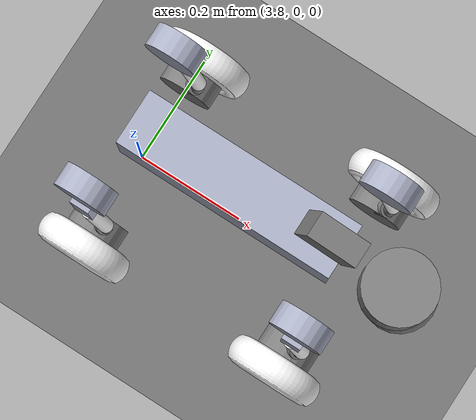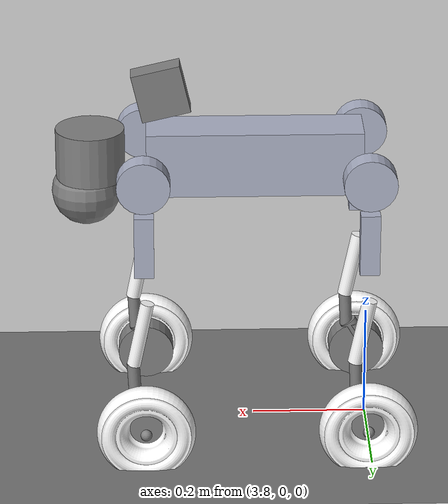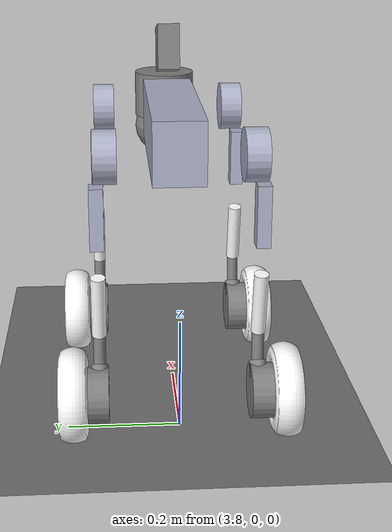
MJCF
<mujoco model="go2w">
  <compiler angle="radian" meshdir="meshes"/>

  <option timestep="0.002" gravity="0 0 -9.81" integrator="implicitfast"/>

  <default>
    <joint damping="0.5" armature="0.01"/>
    <geom friction="1.0 0.005 0.001" condim="3" conaffinity="1" contype="1"/>
    <motor ctrllimited="true"/>
  </default>

  <asset>
    <mesh name="left_wheel" file="left_wheel.stl"/>
    <mesh name="right_wheel" file="right_wheel.stl"/>
    <texture type="2d" name="groundplane" builtin="checker" rgb1="0.4 0.4 0.4" rgb2="0.5 0.5 0.5"
             width="300" height="300" mark="edge" markrgb="0.3 0.3 0.3"/>
    <material name="groundplane" texture="groundplane" texrepeat="5 5" texuniform="true" reflectance="0.1"/>
  </asset>

  <worldbody>
    <light pos="0 0 5" dir="0 0 -1" directional="true" diffuse="0.8 0.8 0.8"/>
    <geom name="floor" type="plane" size="20 20 0.1" material="groundplane"/>

    <!-- Robot base with freejoint for floating base dynamics -->
    <body name="base_link" pos="4.0 0 0.5">
      <freejoint name="root"/>
      <inertial pos="0.021112 0 -0.005366" mass="6.921"
                fullinertia="0.02448 0.098077 0.107 0.00012166 0.0014849 -3.12e-05"/>
      <!-- Base collision box -->
      <geom name="base_collision" size="0.1881 0.04675 0.057" type="box" rgba="0.671705 0.692426 0.77427 1"/>
      <!-- Head upper -->
      <geom size="0.06 0.045" pos="0.285 0 0.01" type="cylinder" contype="0" conaffinity="0"/>
      <!-- Head lower -->
      <geom size="0.06" pos="0.293 0 -0.06" contype="0" conaffinity="0"/>
      <!-- LiDAR mount -->
      <geom size="0.043 0.043 0.021" pos="0.16143 0 0.12262"
            quat="-0.0800485 0.0800501 0.702563 0.70256" type="box" contype="0" conaffinity="0"/>

      <!-- IMU site (on base body) -->
      <site name="imu_site" pos="0.16143 0 0.09787" size="0.01"/>

      <!-- Camera site (front-facing) -->
      <camera name="front_camera" pos="0.3 0 0.0" euler="0 0 0" fovy="120"
              resolution="1280 720" mode="fixed"/>

      <!-- ====== Front-Left leg ====== -->
      <body name="FL_hip" pos="0.1934 0.0465 0">
        <inertial pos="-0.0054 0.00194 -0.000105" quat="0.497014 0.499245 0.505462 0.498237"
                  mass="0.678" diaginertia="0.00088403 0.000596003 0.000479967"/>
        <joint name="FL_hip_joint" axis="1 0 0" range="-1.0472 1.0472"/>
        <geom size="0.046 0.02" pos="0 0.08 0" quat="0.707107 0.707107 0 0" type="cylinder"
              rgba="0.671705 0.692426 0.77427 1"/>
        <body name="FL_thigh" pos="0 0.0955 0">
          <inertial pos="-0.00374 -0.0223 -0.0327" quat="0.829533 0.0847635 -0.0200632 0.551623"
                    mass="1.152" diaginertia="0.00594973 0.00584149 0.000878787"/>
          <joint name="FL_thigh_joint" axis="0 1 0" range="-1.5708 3.4907"/>
          <geom size="0.055 0.01225 0.017" pos="0 0 -0.1065" quat="0.707107 0 0.707107 0"
                type="box" rgba="0.671705 0.692426 0.77427 1"/>
          <body name="FL_calf" pos="0 0 -0.213">
            <inertial pos="-0.00583047 -0.000177199 -0.202827" quat="0.706542 0.0341434 0.029565 0.706229"
                      mass="0.847352" diaginertia="0.00439089 0.00374067 0.0010673"/>
            <joint name="FL_calf_joint" axis="0 1 0" range="-2.7227 -0.83776"/>
            <geom size="0.012 0.06" pos="0.008 0 -0.06" quat="0.994493 0 -0.104807 0" type="cylinder" rgba="1 1 1 1"/>
            <geom size="0.011 0.0325" pos="0.02 0 -0.148" quat="0.999688 0 0.0249974 0" type="cylinder"/>
            <geom size="0.0155 0.015" pos="0.00801333 0 -0.18745" quat="0.965093 0 0.261909 0" type="cylinder"/>
            <geom size="0.05 0.025" pos="0 0.01 -0.2264" quat="0.707107 0.707107 0 0" type="cylinder"/>
            <body name="FL_foot" pos="0 0 -0.2264">
              <inertial pos="0 0.06 0" quat="0.707107 0 0 0.707107" mass="0.52" diaginertia="0.0012 0.0007 0.0007"/>
              <joint name="FL_foot_joint" axis="0 1 0"/>
              <geom type="mesh" rgba="1 1 1 1" mesh="left_wheel"/>
              <site name="FL_foot_site" pos="0 0.06 0" size="0.01"/>
            </body>
          </body>
        </body>
      </body>

      <!-- ====== Front-Right leg ====== -->
      <body name="FR_hip" pos="0.1934 -0.0465 0">
        <inertial pos="-0.0054 -0.00194 -0.000105" quat="0.498237 0.505462 0.499245 0.497014"
                  mass="0.678" diaginertia="0.00088403 0.000596003 0.000479967"/>
        <joint name="FR_hip_joint" axis="1 0 0" range="-1.0472 1.0472"/>
        <geom size="0.046 0.02" pos="0 -0.08 0" quat="0.707107 0.707107 0 0" type="cylinder"
              rgba="0.671705 0.692426 0.77427 1"/>
        <body name="FR_thigh" pos="0 -0.0955 0">
          <inertial pos="-0.00374 0.0223 -0.0327" quat="0.551623 -0.0200632 0.0847635 0.829533"
                    mass="1.152" diaginertia="0.00594973 0.00584149 0.000878787"/>
          <joint name="FR_thigh_joint" axis="0 1 0" range="-1.5708 3.4907"/>
          <geom size="0.055 0.01225 0.017" pos="0 0 -0.1065" quat="0.707107 0 0.707107 0"
                type="box" rgba="0.671705 0.692426 0.77427 1"/>
          <body name="FR_calf" pos="0 0 -0.213">
            <inertial pos="0.00941703 0.000177199 -0.202827" quat="0.706926 -0.0108701 -0.00627168 0.707176"
                      mass="0.847352" diaginertia="0.00434456 0.00372059 0.00104105"/>
            <joint name="FR_calf_joint" axis="0 1 0" range="-2.7227 -0.83776"/>
            <geom size="0.013 0.06" pos="0.01 0 -0.06" quat="0.995004 0 -0.0998334 0" type="cylinder" rgba="1 1 1 1"/>
            <geom size="0.011 0.0325" pos="0.02 0 -0.148" quat="0.999688 0 0.0249974 0" type="cylinder"/>
            <geom size="0.0155 0.015" pos="0.00801333 0 -0.18745" quat="0.965093 0 0.261909 0" type="cylinder"/>
            <geom size="0.05 0.025" pos="0 -0.01 -0.2264" quat="0.707107 0.707107 0 0" type="cylinder"/>
            <body name="FR_foot" pos="0 0 -0.2264">
              <inertial pos="0 -0.06 0" quat="0.707107 0 0 0.707107" mass="0.52" diaginertia="0.0012 0.0007 0.0007"/>
              <joint name="FR_foot_joint" axis="0 1 0"/>
              <geom type="mesh" rgba="1 1 1 1" mesh="right_wheel"/>
              <site name="FR_foot_site" pos="0 -0.06 0" size="0.01"/>
            </body>
          </body>
        </body>
      </body>

      <!-- ====== Rear-Left leg ====== -->
      <body name="RL_hip" pos="-0.1934 0.0465 0">
        <inertial pos="0.0054 0.00194 -0.000105" quat="0.505462 0.498237 0.497014 0.499245"
                  mass="0.678" diaginertia="0.00088403 0.000596003 0.000479967"/>
        <joint name="RL_hip_joint" axis="1 0 0" range="-1.0472 1.0472"/>
        <geom size="0.046 0.02" pos="0 0.08 0" quat="0.707107 0.707107 0 0" type="cylinder"
              rgba="0.671705 0.692426 0.77427 1"/>
        <body name="RL_thigh" pos="0 0.0955 0">
          <inertial pos="-0.00374 -0.0223 -0.0327" quat="0.829533 0.0847635 -0.0200632 0.551623"
                    mass="1.152" diaginertia="0.00594973 0.00584149 0.000878787"/>
          <joint name="RL_thigh_joint" axis="0 1 0" range="-0.5236 4.5379"/>
          <geom size="0.055 0.01225 0.017" pos="0 0 -0.1065" quat="0.707107 0 0.707107 0"
                type="box" rgba="0.671705 0.692426 0.77427 1"/>
          <body name="RL_calf" pos="0 0 -0.213">
            <inertial pos="-0.00583047 -0.000177199 -0.202827" quat="0.706542 0.0341434 0.029565 0.706229"
                      mass="0.847352" diaginertia="0.00439089 0.00374067 0.0010673"/>
            <joint name="RL_calf_joint" axis="0 1 0" range="-2.7227 -0.83776"/>
            <geom size="0.013 0.06" pos="0.01 0 -0.06" quat="0.995004 0 -0.0998334 0" type="cylinder" rgba="1 1 1 1"/>
            <geom size="0.011 0.0325" pos="0.02 0 -0.148" quat="0.999688 0 0.0249974 0" type="cylinder"/>
            <geom size="0.0155 0.015" pos="0.00801333 0 -0.18745" quat="0.965093 0 0.261909 0" type="cylinder"/>
            <geom size="0.05 0.025" pos="0 0.01 -0.2264" quat="0.707107 0.707107 0 0" type="cylinder"/>
            <body name="RL_foot" pos="0 0 -0.2264">
              <inertial pos="0 0.06 0" quat="0.707107 0 0 0.707107" mass="0.52" diaginertia="0.0012 0.0007 0.0007"/>
              <joint name="RL_foot_joint" axis="0 1 0"/>
              <geom type="mesh" rgba="1 1 1 1" mesh="left_wheel"/>
              <site name="RL_foot_site" pos="0 0.06 0" size="0.01"/>
            </body>
          </body>
        </body>
      </body>

      <!-- ====== Rear-Right leg ====== -->
      <body name="RR_hip" pos="-0.1934 -0.0465 0">
        <inertial pos="0.0054 -0.00194 -0.000105" quat="0.499245 0.497014 0.498237 0.505462"
                  mass="0.678" diaginertia="0.00088403 0.000596003 0.000479967"/>
        <joint name="RR_hip_joint" axis="1 0 0" range="-1.0472 1.0472"/>
        <geom size="0.046 0.02" pos="0 -0.08 0" quat="0.707107 0.707107 0 0" type="cylinder"
              rgba="0.671705 0.692426 0.77427 1"/>
        <body name="RR_thigh" pos="0 -0.0955 0">
          <inertial pos="-0.00374 0.0223 -0.0327" quat="0.551623 -0.0200632 0.0847635 0.829533"
                    mass="1.152" diaginertia="0.00594973 0.00584149 0.000878787"/>
          <joint name="RR_thigh_joint" axis="0 1 0" range="-0.5236 4.5379"/>
          <geom size="0.055 0.01225 0.017" pos="0 0 -0.1065" quat="0.707107 0 0.707107 0"
                type="box" rgba="0.671705 0.692426 0.77427 1"/>
          <body name="RR_calf" pos="0 0 -0.213">
            <inertial pos="0.00941703 0.000177199 -0.202827" quat="0.706926 -0.0108701 -0.00627168 0.707176"
                      mass="0.847352" diaginertia="0.00434456 0.00372059 0.00104105"/>
            <joint name="RR_calf_joint" axis="0 1 0" range="-2.7227 -0.83776"/>
            <geom size="0.013 0.06" pos="0.01 0 -0.06" quat="0.995004 0 -0.0998334 0" type="cylinder" rgba="1 1 1 1"/>
            <geom size="0.011 0.0325" pos="0.02 0 -0.148" quat="0.999688 0 0.0249974 0" type="cylinder"/>
            <geom size="0.0155 0.015" pos="0.00801333 0 -0.18745" quat="0.965093 0 0.261909 0" type="cylinder"/>
            <geom size="0.05 0.025" pos="0 -0.01 -0.2264" quat="0.707107 0.707107 0 0" type="cylinder"/>
            <body name="RR_foot" pos="0 0 -0.2264">
              <inertial pos="0 -0.06 0" quat="0.707107 0 0 0.707107" mass="0.52" diaginertia="0.0012 0.0007 0.0007"/>
              <joint name="RR_foot_joint" axis="0 1 0"/>
              <geom type="mesh" rgba="1 1 1 1" mesh="right_wheel"/>
              <site name="RR_foot_site" pos="0 -0.06 0" size="0.01"/>
            </body>
          </body>
        </body>
      </body>
    </body>
  </worldbody>

  <!-- Actuators: effort for leg joints, velocity for wheel joints -->
  <actuator>
    <!-- Hip joints (effort-controlled) -->
    <motor name="FL_hip_motor" joint="FL_hip_joint" ctrlrange="-23.7 23.7" gear="1"/>
    <motor name="FR_hip_motor" joint="FR_hip_joint" ctrlrange="-23.7 23.7" gear="1"/>
    <motor name="RL_hip_motor" joint="RL_hip_joint" ctrlrange="-23.7 23.7" gear="1"/>
    <motor name="RR_hip_motor" joint="RR_hip_joint" ctrlrange="-23.7 23.7" gear="1"/>
    <!-- Thigh joints (effort-controlled) -->
    <motor name="FL_thigh_motor" joint="FL_thigh_joint" ctrlrange="-23.7 23.7" gear="1"/>
    <motor name="FR_thigh_motor" joint="FR_thigh_joint" ctrlrange="-23.7 23.7" gear="1"/>
    <motor name="RL_thigh_motor" joint="RL_thigh_joint" ctrlrange="-23.7 23.7" gear="1"/>
    <motor name="RR_thigh_motor" joint="RR_thigh_joint" ctrlrange="-23.7 23.7" gear="1"/>
    <!-- Calf joints (effort-controlled, higher torque) -->
    <motor name="FL_calf_motor" joint="FL_calf_joint" ctrlrange="-35.55 35.55" gear="1"/>
    <motor name="FR_calf_motor" joint="FR_calf_joint" ctrlrange="-35.55 35.55" gear="1"/>
    <motor name="RL_calf_motor" joint="RL_calf_joint" ctrlrange="-35.55 35.55" gear="1"/>
    <motor name="RR_calf_motor" joint="RR_calf_joint" ctrlrange="-35.55 35.55" gear="1"/>
    <!-- Wheel joints (velocity-controlled) -->
    <velocity name="FL_wheel_motor" joint="FL_foot_joint" ctrlrange="-23.7 23.7" kv="5.0"/>
    <velocity name="FR_wheel_motor" joint="FR_foot_joint" ctrlrange="-23.7 23.7" kv="5.0"/>
    <velocity name="RL_wheel_motor" joint="RL_foot_joint" ctrlrange="-23.7 23.7" kv="5.0"/>
    <velocity name="RR_wheel_motor" joint="RR_foot_joint" ctrlrange="-23.7 23.7" kv="5.0"/>
  </actuator>

  <!-- Sensors -->
  <sensor>
    <!-- IMU -->
    <accelerometer name="imu_accel" site="imu_site"/>
    <gyro name="imu_gyro" site="imu_site"/>
    <!-- Foot contact (touch sensors) -->
    <touch name="FL_foot_contact" site="FL_foot_site"/>
    <touch name="FR_foot_contact" site="FR_foot_site"/>
    <touch name="RL_foot_contact" site="RL_foot_site"/>
    <touch name="RR_foot_contact" site="RR_foot_site"/>
    <!-- Base body state (ground truth) -->
    <framepos name="base_pos" objtype="body" objname="base_link"/>
    <framequat name="base_quat" objtype="body" objname="base_link"/>
    <framelinvel name="base_linvel" objtype="body" objname="base_link"/>
    <frameangvel name="base_angvel" objtype="body" objname="base_link"/>
  </sensor>
</mujoco>
